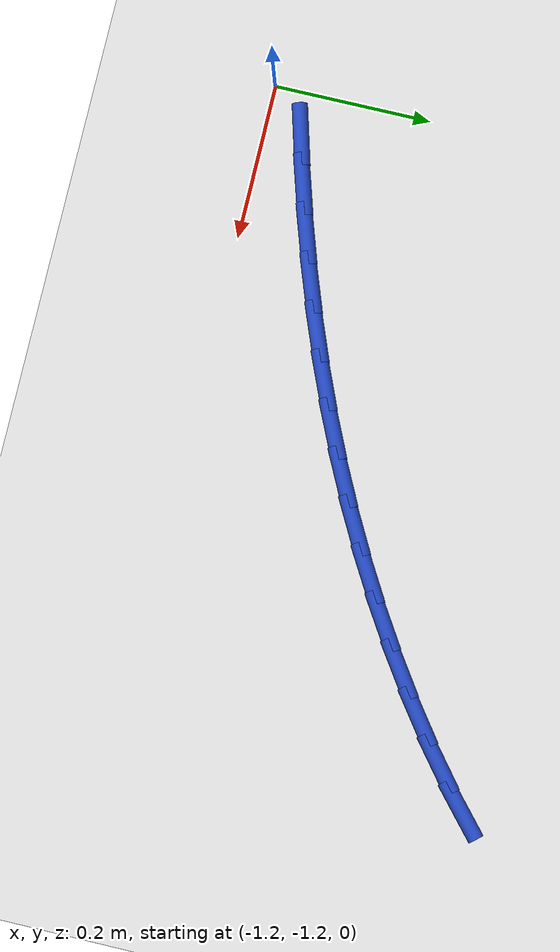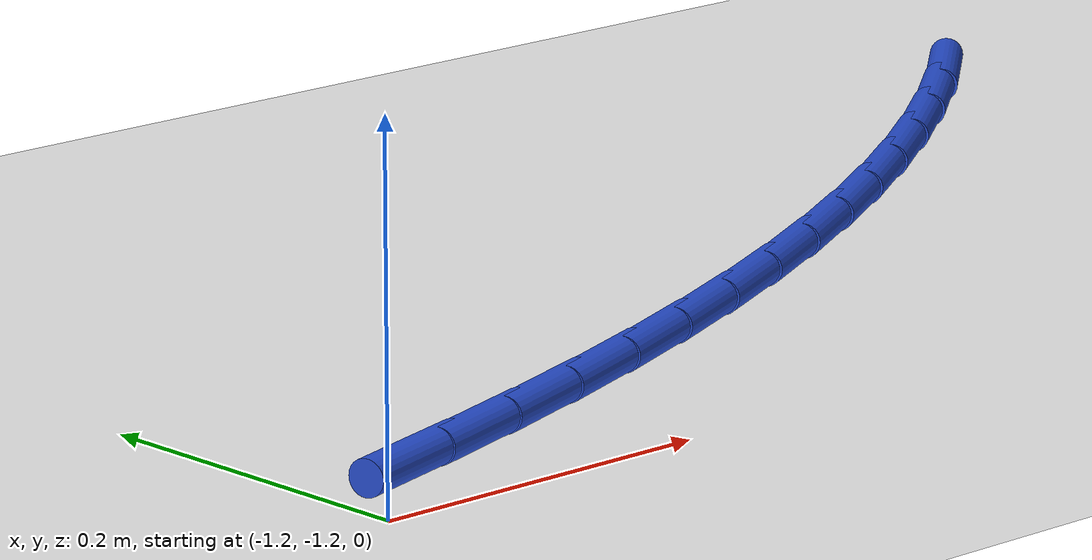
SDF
<sdf version="1.6">
 <world name="default">
  <model name="ground_plane">
   <static>1</static>
   <link name="link">
    <collision name="collision">
     <geometry><plane><normal>0 0 1</normal><size>100 100</size></plane></geometry>
     <surface><friction><ode><mu>100</mu><mu2>50</mu2></ode></friction></surface>
    </collision>
    <visual name="visual">
     <cast_shadows>0</cast_shadows>
     <geometry><plane><normal>0 0 1</normal><size>100 100</size></plane></geometry>
     <material>
      <script><uri>file://media/materials/scripts/gazebo.material</uri><name>Gazebo/WhiteGlow</name></script>
     </material>
    </visual>
   </link>
  </model>
  <model name="line">
   <link name="link_92">
    <pose>-1.1437911426455958 -1.1532367733742377 0.01 0 1.57 0.2773585100170716</pose>
    <collision name="collision">
     <geometry><cylinder><radius>0.01</radius><length>0.08</length></cylinder></geometry>
    </collision>
    <visual name="visual">
     <material>
      <script><name>Gazebo/Blue</name><uri>file://media/materials/scripts/gazebo.material</uri></script>
     </material>
     <geometry><cylinder><radius>0.01</radius><length>0.08</length></cylinder></geometry>
    </visual>
   </link>
   <link name="link_93">
    <pose>-1.0826800786952724 -1.1358386623698074 0.01 0 1.57 0.30114509464087263</pose>
    <collision name="collision">
     <geometry><cylinder><radius>0.01</radius><length>0.08</length></cylinder></geometry>
    </collision>
    <visual name="visual">
     <material>
      <script><name>Gazebo/Blue</name><uri>file://media/materials/scripts/gazebo.material</uri></script>
     </material>
     <geometry><cylinder><radius>0.01</radius><length>0.08</length></cylinder></geometry>
    </visual>
   </link>
   <link name="link_94">
    <pose>-1.022428816470936 -1.1171251407583709 0.01 0 1.57 0.3262367335547779</pose>
    <collision name="collision">
     <geometry><cylinder><radius>0.01</radius><length>0.08</length></cylinder></geometry>
    </collision>
    <visual name="visual">
     <material>
      <script><name>Gazebo/Blue</name><uri>file://media/materials/scripts/gazebo.material</uri></script>
     </material>
     <geometry><cylinder><radius>0.01</radius><length>0.08</length></cylinder></geometry>
    </visual>
   </link>
   <link name="link_95">
    <pose>-0.9630400837332097 -1.0970324195127166 0.01 0 1.57 0.35260562366081355</pose>
    <collision name="collision">
     <geometry><cylinder><radius>0.01</radius><length>0.08</length></cylinder></geometry>
    </collision>
    <visual name="visual">
     <material>
      <script><name>Gazebo/Blue</name><uri>file://media/materials/scripts/gazebo.material</uri></script>
     </material>
     <geometry><cylinder><radius>0.01</radius><length>0.08</length></cylinder></geometry>
    </visual>
   </link>
   <link name="link_96">
    <pose>-0.9045166082427168 -1.075496709605633 0.01 0 1.57 0.3802116580420974</pose>
    <collision name="collision">
     <geometry><cylinder><radius>0.01</radius><length>0.08</length></cylinder></geometry>
    </collision>
    <visual name="visual">
     <material>
      <script><name>Gazebo/Blue</name><uri>file://media/materials/scripts/gazebo.material</uri></script>
     </material>
     <geometry><cylinder><radius>0.01</radius><length>0.08</length></cylinder></geometry>
    </visual>
   </link>
   <link name="link_97">
    <pose>-0.8468611177600833 -1.0524542220099093 0.01 0 1.57 0.4090014873851573</pose>
    <collision name="collision">
     <geometry><cylinder><radius>0.01</radius><length>0.08</length></cylinder></geometry>
    </collision>
    <visual name="visual">
     <material>
      <script><name>Gazebo/Blue</name><uri>file://media/materials/scripts/gazebo.material</uri></script>
     </material>
     <geometry><cylinder><radius>0.01</radius><length>0.08</length></cylinder></geometry>
    </visual>
   </link>
   <link name="link_98">
    <pose>-0.7900763400459332 -1.0278411676983346 0.01 0 1.57 0.43890785433987917</pose>
    <collision name="collision">
     <geometry><cylinder><radius>0.01</radius><length>0.08</length></cylinder></geometry>
    </collision>
    <visual name="visual">
     <material>
      <script><name>Gazebo/Blue</name><uri>file://media/materials/scripts/gazebo.material</uri></script>
     </material>
     <geometry><cylinder><radius>0.01</radius><length>0.08</length></cylinder></geometry>
    </visual>
   </link>
   <link name="link_99">
    <pose>-0.7341650028608906 -1.0015937576436975 0.01 0 1.57 0.4698492845099005</pose>
    <collision name="collision">
     <geometry><cylinder><radius>0.01</radius><length>0.08</length></cylinder></geometry>
    </collision>
    <visual name="visual">
     <material>
      <script><name>Gazebo/Blue</name><uri>file://media/materials/scripts/gazebo.material</uri></script>
     </material>
     <geometry><cylinder><radius>0.01</radius><length>0.08</length></cylinder></geometry>
    </visual>
   </link>
   <link name="link_100">
    <pose>-0.6791298339655792 -0.9736482028187866 0.01 0 1.57 0.5017302103732902</pose>
    <collision name="collision">
     <geometry><cylinder><radius>0.01</radius><length>0.08</length></cylinder></geometry>
    </collision>
    <visual name="visual">
     <material>
      <script><name>Gazebo/Blue</name><uri>file://media/materials/scripts/gazebo.material</uri></script>
     </material>
     <geometry><cylinder><radius>0.01</radius><length>0.08</length></cylinder></geometry>
    </visual>
   </link>
   <link name="link_101">
    <pose>-0.6249735611206251 -0.9439407141963917 0.01 0 1.57 0.534441588121195</pose>
    <collision name="collision">
     <geometry><cylinder><radius>0.01</radius><length>0.08</length></cylinder></geometry>
    </collision>
    <visual name="visual">
     <material>
      <script><name>Gazebo/Blue</name><uri>file://media/materials/scripts/gazebo.material</uri></script>
     </material>
     <geometry><cylinder><radius>0.01</radius><length>0.08</length></cylinder></geometry>
    </visual>
   </link>
   <link name="link_102">
    <pose>-0.5716989120866515 -0.912407502749301 0.01 0 1.57 0.5678620419781932</pose>
    <collision name="collision">
     <geometry><cylinder><radius>0.01</radius><length>0.08</length></cylinder></geometry>
    </collision>
    <visual name="visual">
     <material>
      <script><name>Gazebo/Blue</name><uri>file://media/materials/scripts/gazebo.material</uri></script>
     </material>
     <geometry><cylinder><radius>0.01</radius><length>0.08</length></cylinder></geometry>
    </visual>
   </link>
   <link name="link_103">
    <pose>-0.519308614624283 -0.8789847794503037 0.01 0 1.57 0.6019823355275497</pose>
    <collision name="collision">
     <geometry><cylinder><radius>0.01</radius><length>0.08</length></cylinder></geometry>
    </collision>
    <visual name="visual">
     <material>
      <script><name>Gazebo/Blue</name><uri>file://media/materials/scripts/gazebo.material</uri></script>
     </material>
     <geometry><cylinder><radius>0.01</radius><length>0.08</length></cylinder></geometry>
    </visual>
   </link>
   <link name="link_104">
    <pose>-0.46781919061386573 -0.8436089233971498 0.01 0 1.57 0.6384092336619922</pose>
    <collision name="collision">
     <geometry><cylinder><radius>0.01</radius><length>0.08</length></cylinder></geometry>
    </collision>
    <visual name="visual">
     <material>
      <script><name>Gazebo/Blue</name><uri>file://media/materials/scripts/gazebo.material</uri></script>
     </material>
     <geometry><cylinder><radius>0.01</radius><length>0.08</length></cylinder></geometry>
    </visual>
   </link>
   <link name="link_105">
    <pose>-0.41743292412471406 -0.8062185777871863 0.01 0 1.57 0.6785463763280501</pose>
    <collision name="collision">
     <geometry><cylinder><radius>0.01</radius><length>0.08</length></cylinder></geometry>
    </collision>
    <visual name="visual">
     <material>
      <script><name>Gazebo/Blue</name><uri>file://media/materials/scripts/gazebo.material</uri></script>
     </material>
     <geometry><cylinder><radius>0.01</radius><length>0.08</length></cylinder></geometry>
    </visual>
   </link>
   <link name="link_106">
    <pose>-0.36848522811519907 -0.7667540084141856 0.01 0 1.57 0.7227073623220387</pose>
    <collision name="collision">
     <geometry><cylinder><radius>0.01</radius><length>0.08</length></cylinder></geometry>
    </collision>
    <visual name="visual">
     <material>
      <script><name>Gazebo/Blue</name><uri>file://media/materials/scripts/gazebo.material</uri></script>
     </material>
     <geometry><cylinder><radius>0.01</radius><length>0.08</length></cylinder></geometry>
    </visual>
   </link>
  </model>
 </world>
</sdf>
